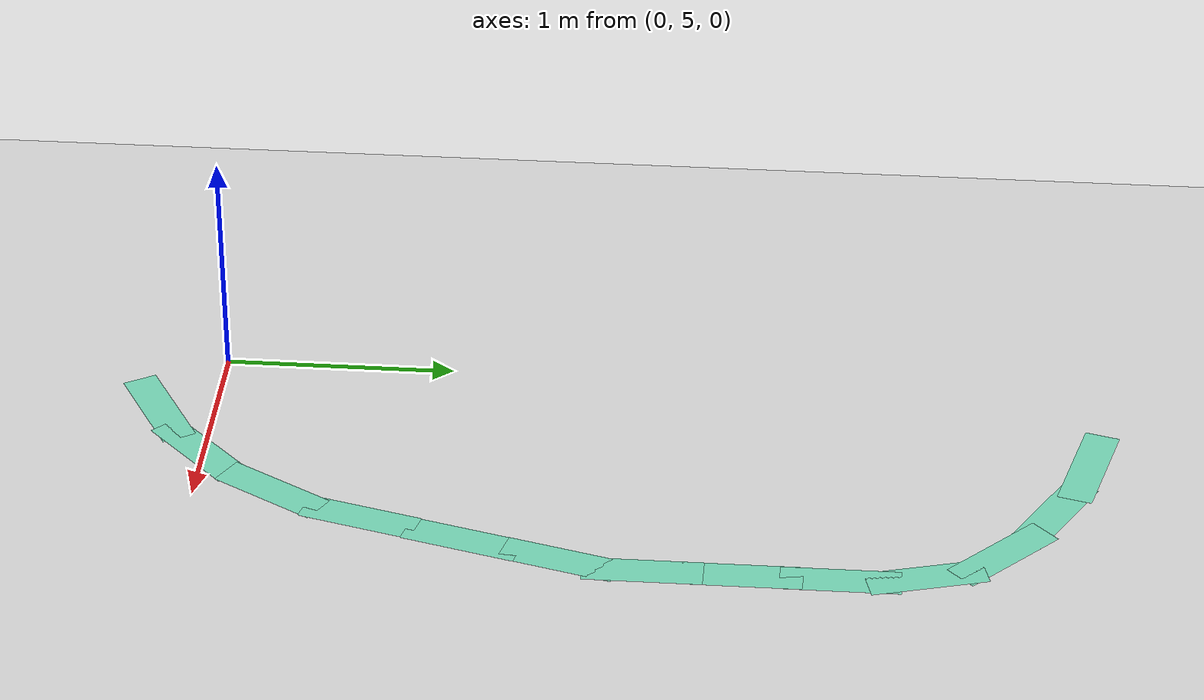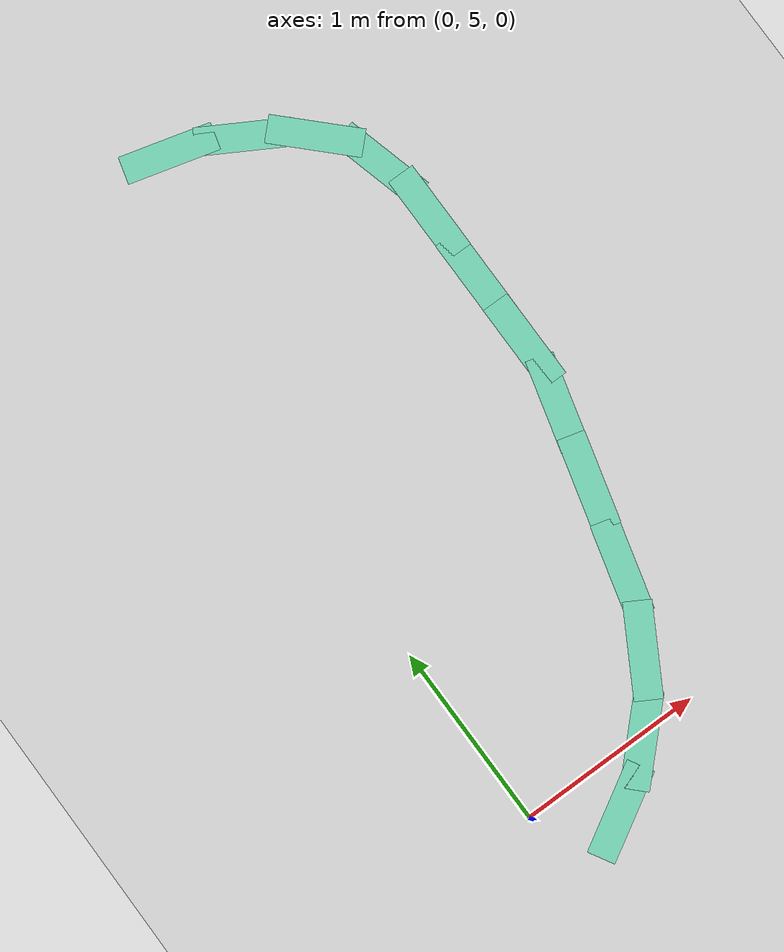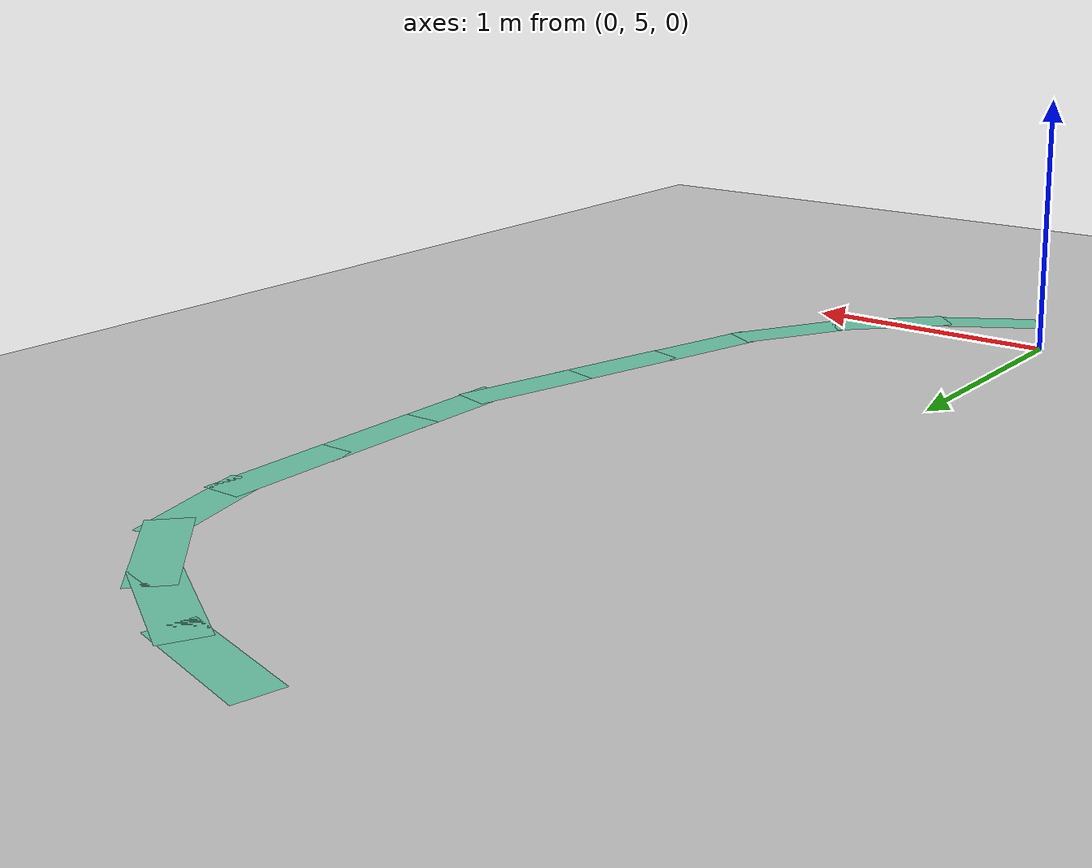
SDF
<sdf version="1.6">
 <world name="default">
  <model name="ground_plane">
   <static>1</static>
   <link name="link">
    <collision name="collision">
     <geometry><plane><normal>0 0 1</normal><size>100 100</size></plane></geometry>
     <surface><friction><ode><mu>100</mu><mu2>50</mu2></ode></friction></surface>
    </collision>
    <visual name="visual">
     <cast_shadows>0</cast_shadows>
     <geometry><plane><normal>0 0 1</normal><size>100 100</size></plane></geometry>
     <material>
      <script><uri>file://media/materials/scripts/gazebo.material</uri><name>Gazebo/Grey</name></script>
     </material>
    </visual>
   </link>
  </model>
  <model name="pomdp_path">
   <link name="Wall_100_clone">
    <pose>-9.37317 0.877969 0 0 -0 2.618</pose>
    <visual name="Wall_100_Visual">
     <pose>0 0 0.0001 0 -0 0</pose>
     <geometry><box><size>0.5 0.15 0</size></box></geometry>
     <material>
      <script><uri>file://media/materials/scripts/gazebo.material</uri><name>Gazebo/Grey</name></script>
      <ambient>0.435294 0.796078 0.67451 1</ambient>
      <shader type="pixel"/>
     </material>
     <meta><layer>0</layer></meta>
    </visual>
    <collision name="Wall_100_Collision">
     <pose>0 0 0.0001 0 -0 0</pose>
     <geometry><box><size>0.5 0.15 0</size></box></geometry>
     <surface>
      <friction>
       <ode><mu>1</mu><mu2>1</mu2><fdir1>0 0 0</fdir1><slip1>0</slip1><slip2>0</slip2></ode>
       <torsional>
        <coefficient>1</coefficient>
        <patch_radius>0</patch_radius>
        <surface_radius>0</surface_radius>
        <use_patch_radius>1</use_patch_radius>
        <ode><slip>0</slip></ode>
       </torsional>
      </friction>
      <bounce><restitution_coefficient>0</restitution_coefficient><threshold>1e+06</threshold></bounce>
      <contact>
       <collide_without_contact>0</collide_without_contact>
       <collide_without_contact_bitmask>1</collide_without_contact_bitmask>
       <collide_bitmask>1</collide_bitmask>
       <ode>
        <soft_cfm>0</soft_cfm>
        <soft_erp>0.2</soft_erp>
        <kp>1e+13</kp>
        <kd>1</kd>
        <max_vel>0.01</max_vel>
        <min_depth>0</min_depth>
       </ode>
       <bullet>
        <split_impulse>1</split_impulse>
        <split_impulse_penetration_threshold>-0.01</split_impulse_penetration_threshold>
        <soft_cfm>0</soft_cfm>
        <soft_erp>0.2</soft_erp>
        <kp>1e+13</kp>
        <kd>1</kd>
       </bullet>
      </contact>
     </surface>
    </collision>
   </link>
   <link name="Wall_101_clone_clone">
    <pose>-9.02258 0.726106 0 0 0 -0.261789</pose>
    <visual name="Wall_101_Visual">
     <pose>0 0 0.0001 0 -0 0</pose>
     <geometry><box><size>0.5 0.15 0</size></box></geometry>
     <material>
      <script><uri>file://media/materials/scripts/gazebo.material</uri><name>Gazebo/Grey</name></script>
      <ambient>0.435294 0.796078 0.67451 1</ambient>
      <shader type="pixel"/>
     </material>
     <meta><layer>0</layer></meta>
    </visual>
    <collision name="Wall_101_Collision">
     <pose>0 0 0.0001 0 -0 0</pose>
     <geometry><box><size>0.5 0.15 0</size></box></geometry>
     <surface>
      <friction>
       <ode><mu>1</mu><mu2>1</mu2><fdir1>0 0 0</fdir1><slip1>0</slip1><slip2>0</slip2></ode>
       <torsional>
        <coefficient>1</coefficient>
        <patch_radius>0</patch_radius>
        <surface_radius>0</surface_radius>
        <use_patch_radius>1</use_patch_radius>
        <ode><slip>0</slip></ode>
       </torsional>
      </friction>
      <bounce><restitution_coefficient>0</restitution_coefficient><threshold>1e+06</threshold></bounce>
      <contact>
       <collide_without_contact>0</collide_without_contact>
       <collide_without_contact_bitmask>1</collide_without_contact_bitmask>
       <collide_bitmask>1</collide_bitmask>
       <ode>
        <soft_cfm>0</soft_cfm>
        <soft_erp>0.2</soft_erp>
        <kp>1e+13</kp>
        <kd>1</kd>
        <max_vel>0.01</max_vel>
        <min_depth>0</min_depth>
       </ode>
       <bullet>
        <split_impulse>1</split_impulse>
        <split_impulse_penetration_threshold>-0.01</split_impulse_penetration_threshold>
        <soft_cfm>0</soft_cfm>
        <soft_erp>0.2</soft_erp>
        <kp>1e+13</kp>
        <kd>1</kd>
       </bullet>
      </contact>
     </surface>
    </collision>
   </link>
   <link name="Wall_125_clone_1">
    <pose>-8.88574 4.74457 0 0 -0 0.523606</pose>
    <visual name="Wall_125_Visual">
     <pose>0 0 0.0001 0 -0 0</pose>
     <geometry><box><size>0.5 0.15 0</size></box></geometry>
     <material>
      <script><uri>file://media/materials/scripts/gazebo.material</uri><name>Gazebo/Grey</name></script>
      <ambient>0.435294 0.796078 0.67451 1</ambient>
      <shader type="pixel"/>
     </material>
     <meta><layer>0</layer></meta>
    </visual>
    <collision name="Wall_125_Collision">
     <pose>0 0 0.0001 0 -0 0</pose>
     <geometry><box><size>0.5 0.15 0</size></box></geometry>
     <surface>
      <friction>
       <ode><mu>1</mu><mu2>1</mu2><fdir1>0 0 0</fdir1><slip1>0</slip1><slip2>0</slip2></ode>
       <torsional>
        <coefficient>1</coefficient>
        <patch_radius>0</patch_radius>
        <surface_radius>0</surface_radius>
        <use_patch_radius>1</use_patch_radius>
        <ode><slip>0</slip></ode>
       </torsional>
      </friction>
      <bounce><restitution_coefficient>0</restitution_coefficient><threshold>1e+06</threshold></bounce>
      <contact>
       <collide_without_contact>0</collide_without_contact>
       <collide_without_contact_bitmask>1</collide_without_contact_bitmask>
       <collide_bitmask>1</collide_bitmask>
       <ode>
        <soft_cfm>0</soft_cfm>
        <soft_erp>0.2</soft_erp>
        <kp>1e+13</kp>
        <kd>1</kd>
        <max_vel>0.01</max_vel>
        <min_depth>0</min_depth>
       </ode>
       <bullet>
        <split_impulse>1</split_impulse>
        <split_impulse_penetration_threshold>-0.01</split_impulse_penetration_threshold>
        <soft_cfm>0</soft_cfm>
        <soft_erp>0.2</soft_erp>
        <kp>1e+13</kp>
        <kd>1</kd>
       </bullet>
      </contact>
     </surface>
    </collision>
   </link>
   <link name="Wall_126_clone">
    <pose>-9.18154 4.52159 0 0 -0 0.785406</pose>
    <visual name="Wall_126_Visual">
     <pose>0 0 0.0001 0 -0 0</pose>
     <geometry><box><size>0.5 0.15 0</size></box></geometry>
     <material>
      <script><uri>file://media/materials/scripts/gazebo.material</uri><name>Gazebo/Grey</name></script>
      <ambient>0.435294 0.796078 0.67451 1</ambient>
      <shader type="pixel"/>
     </material>
     <meta><layer>0</layer></meta>
    </visual>
    <collision name="Wall_126_Collision">
     <pose>0 0 0.0001 0 -0 0</pose>
     <geometry><box><size>0.5 0.15 0</size></box></geometry>
     <surface>
      <friction>
       <ode><mu>1</mu><mu2>1</mu2><fdir1>0 0 0</fdir1><slip1>0</slip1><slip2>0</slip2></ode>
       <torsional>
        <coefficient>1</coefficient>
        <patch_radius>0</patch_radius>
        <surface_radius>0</surface_radius>
        <use_patch_radius>1</use_patch_radius>
        <ode><slip>0</slip></ode>
       </torsional>
      </friction>
      <bounce><restitution_coefficient>0</restitution_coefficient><threshold>1e+06</threshold></bounce>
      <contact>
       <collide_without_contact>0</collide_without_contact>
       <collide_without_contact_bitmask>1</collide_without_contact_bitmask>
       <collide_bitmask>1</collide_bitmask>
       <ode>
        <soft_cfm>0</soft_cfm>
        <soft_erp>0.2</soft_erp>
        <kp>1e+13</kp>
        <kd>1</kd>
        <max_vel>0.01</max_vel>
        <min_depth>0</min_depth>
       </ode>
       <bullet>
        <split_impulse>1</split_impulse>
        <split_impulse_penetration_threshold>-0.01</split_impulse_penetration_threshold>
        <soft_cfm>0</soft_cfm>
        <soft_erp>0.2</soft_erp>
        <kp>1e+13</kp>
        <kd>1</kd>
       </bullet>
      </contact>
     </surface>
    </collision>
   </link>
   <link name="Wall_127_clone">
    <pose>-9.45239 4.16599 0 0 -0 1.0472</pose>
    <visual name="Wall_127_Visual">
     <pose>0 0 0.0001 0 -0 0</pose>
     <geometry><box><size>0.5 0.15 0</size></box></geometry>
     <material>
      <script><uri>file://media/materials/scripts/gazebo.material</uri><name>Gazebo/Grey</name></script>
      <ambient>0.435294 0.796078 0.67451 1</ambient>
      <shader type="pixel"/>
     </material>
     <meta><layer>0</layer></meta>
    </visual>
    <collision name="Wall_127_Collision">
     <pose>0 0 0.0001 0 -0 0</pose>
     <geometry><box><size>0.5 0.15 0</size></box></geometry>
     <surface>
      <friction>
       <ode><mu>1</mu><mu2>1</mu2><fdir1>0 0 0</fdir1><slip1>0</slip1><slip2>0</slip2></ode>
       <torsional>
        <coefficient>1</coefficient>
        <patch_radius>0</patch_radius>
        <surface_radius>0</surface_radius>
        <use_patch_radius>1</use_patch_radius>
        <ode><slip>0</slip></ode>
       </torsional>
      </friction>
      <bounce><restitution_coefficient>0</restitution_coefficient><threshold>1e+06</threshold></bounce>
      <contact>
       <collide_without_contact>0</collide_without_contact>
       <collide_without_contact_bitmask>1</collide_without_contact_bitmask>
       <collide_bitmask>1</collide_bitmask>
       <ode>
        <soft_cfm>0</soft_cfm>
        <soft_erp>0.2</soft_erp>
        <kp>1e+13</kp>
        <kd>1</kd>
        <max_vel>0.01</max_vel>
        <min_depth>0</min_depth>
       </ode>
       <bullet>
        <split_impulse>1</split_impulse>
        <split_impulse_penetration_threshold>-0.01</split_impulse_penetration_threshold>
        <soft_cfm>0</soft_cfm>
        <soft_erp>0.2</soft_erp>
        <kp>1e+13</kp>
        <kd>1</kd>
       </bullet>
      </contact>
     </surface>
    </collision>
   </link>
   <link name="Wall_128_clone">
    <pose>-9.61651 3.77217 0 0 -0 1.309</pose>
    <visual name="Wall_128_Visual">
     <pose>0 0 0.0001 0 -0 0</pose>
     <geometry><box><size>0.5 0.15 0</size></box></geometry>
     <material>
      <script><uri>file://media/materials/scripts/gazebo.material</uri><name>Gazebo/Grey</name></script>
      <ambient>0.435294 0.796078 0.67451 1</ambient>
      <shader type="pixel"/>
     </material>
     <meta><layer>0</layer></meta>
    </visual>
    <collision name="Wall_128_Collision">
     <pose>0 0 0.0001 0 -0 0</pose>
     <geometry><box><size>0.5 0.15 0</size></box></geometry>
     <surface>
      <friction>
       <ode><mu>1</mu><mu2>1</mu2><fdir1>0 0 0</fdir1><slip1>0</slip1><slip2>0</slip2></ode>
       <torsional>
        <coefficient>1</coefficient>
        <patch_radius>0</patch_radius>
        <surface_radius>0</surface_radius>
        <use_patch_radius>1</use_patch_radius>
        <ode><slip>0</slip></ode>
       </torsional>
      </friction>
      <bounce><restitution_coefficient>0</restitution_coefficient><threshold>1e+06</threshold></bounce>
      <contact>
       <collide_without_contact>0</collide_without_contact>
       <collide_without_contact_bitmask>1</collide_without_contact_bitmask>
       <collide_bitmask>1</collide_bitmask>
       <ode>
        <soft_cfm>0</soft_cfm>
        <soft_erp>0.2</soft_erp>
        <kp>1e+13</kp>
        <kd>1</kd>
        <max_vel>0.01</max_vel>
        <min_depth>0</min_depth>
       </ode>
       <bullet>
        <split_impulse>1</split_impulse>
        <split_impulse_penetration_threshold>-0.01</split_impulse_penetration_threshold>
        <soft_cfm>0</soft_cfm>
        <soft_erp>0.2</soft_erp>
        <kp>1e+13</kp>
        <kd>1</kd>
       </bullet>
      </contact>
     </surface>
    </collision>
   </link>
   <link name="Wall_128_clone_clone">
    <pose>-9.73995 3.3262 0 0 0 -1.83259</pose>
    <visual name="Wall_128_Visual">
     <pose>0 0 0.0001 0 -0 0</pose>
     <geometry><box><size>0.5 0.15 0</size></box></geometry>
     <material>
      <script><uri>file://media/materials/scripts/gazebo.material</uri><name>Gazebo/Grey</name></script>
      <ambient>0.435294 0.796078 0.67451 1</ambient>
      <shader type="pixel"/>
     </material>
     <meta><layer>0</layer></meta>
    </visual>
    <collision name="Wall_128_Collision">
     <pose>0 0 0.0001 0 -0 0</pose>
     <geometry><box><size>0.5 0.15 0</size></box></geometry>
     <surface>
      <friction>
       <ode><mu>1</mu><mu2>1</mu2><fdir1>0 0 0</fdir1><slip1>0</slip1><slip2>0</slip2></ode>
       <torsional>
        <coefficient>1</coefficient>
        <patch_radius>0</patch_radius>
        <surface_radius>0</surface_radius>
        <use_patch_radius>1</use_patch_radius>
        <ode><slip>0</slip></ode>
       </torsional>
      </friction>
      <bounce><restitution_coefficient>0</restitution_coefficient><threshold>1e+06</threshold></bounce>
      <contact>
       <collide_without_contact>0</collide_without_contact>
       <collide_without_contact_bitmask>1</collide_without_contact_bitmask>
       <collide_bitmask>1</collide_bitmask>
       <ode>
        <soft_cfm>0</soft_cfm>
        <soft_erp>0.2</soft_erp>
        <kp>1e+13</kp>
        <kd>1</kd>
        <max_vel>0.01</max_vel>
        <min_depth>0</min_depth>
       </ode>
       <bullet>
        <split_impulse>1</split_impulse>
        <split_impulse_penetration_threshold>-0.01</split_impulse_penetration_threshold>
        <soft_cfm>0</soft_cfm>
        <soft_erp>0.2</soft_erp>
        <kp>1e+13</kp>
        <kd>1</kd>
       </bullet>
      </contact>
     </surface>
    </collision>
   </link>
   <link name="Wall_128_clone_clone_0">
    <pose>-9.8493 2.91197 0 0 0 -1.83259</pose>
    <visual name="Wall_128_Visual">
     <pose>0 0 0.0001 0 -0 0</pose>
     <geometry><box><size>0.5 0.15 0</size></box></geometry>
     <material>
      <script><uri>file://media/materials/scripts/gazebo.material</uri><name>Gazebo/Grey</name></script>
      <ambient>0.435294 0.796078 0.67451 1</ambient>
      <shader type="pixel"/>
     </material>
     <meta><layer>0</layer></meta>
    </visual>
    <collision name="Wall_128_Collision">
     <pose>0 0 0.0001 0 -0 0</pose>
     <geometry><box><size>0.5 0.15 0</size></box></geometry>
     <surface>
      <friction>
       <ode><mu>1</mu><mu2>1</mu2><fdir1>0 0 0</fdir1><slip1>0</slip1><slip2>0</slip2></ode>
       <torsional>
        <coefficient>1</coefficient>
        <patch_radius>0</patch_radius>
        <surface_radius>0</surface_radius>
        <use_patch_radius>1</use_patch_radius>
        <ode><slip>0</slip></ode>
       </torsional>
      </friction>
      <bounce><restitution_coefficient>0</restitution_coefficient><threshold>1e+06</threshold></bounce>
      <contact>
       <collide_without_contact>0</collide_without_contact>
       <collide_without_contact_bitmask>1</collide_without_contact_bitmask>
       <collide_bitmask>1</collide_bitmask>
       <ode>
        <soft_cfm>0</soft_cfm>
        <soft_erp>0.2</soft_erp>
        <kp>1e+13</kp>
        <kd>1</kd>
        <max_vel>0.01</max_vel>
        <min_depth>0</min_depth>
       </ode>
       <bullet>
        <split_impulse>1</split_impulse>
        <split_impulse_penetration_threshold>-0.01</split_impulse_penetration_threshold>
        <soft_cfm>0</soft_cfm>
        <soft_erp>0.2</soft_erp>
        <kp>1e+13</kp>
        <kd>1</kd>
       </bullet>
      </contact>
     </surface>
    </collision>
   </link>
   <link name="Wall_131_clone">
    <pose>-9.90114 2.56634 0 0 -0 1.5708</pose>
    <visual name="Wall_131_Visual">
     <pose>0 0 0.0001 0 -0 0</pose>
     <geometry><box><size>0.5 0.15 0</size></box></geometry>
     <material>
      <script><uri>file://media/materials/scripts/gazebo.material</uri><name>Gazebo/Grey</name></script>
      <ambient>0.435294 0.796078 0.67451 1</ambient>
      <shader type="pixel"/>
     </material>
     <meta><layer>0</layer></meta>
    </visual>
    <collision name="Wall_131_Collision">
     <pose>0 0 0.0001 0 -0 0</pose>
     <geometry><box><size>0.5 0.15 0</size></box></geometry>
     <surface>
      <friction>
       <ode><mu>1</mu><mu2>1</mu2><fdir1>0 0 0</fdir1><slip1>0</slip1><slip2>0</slip2></ode>
       <torsional>
        <coefficient>1</coefficient>
        <patch_radius>0</patch_radius>
        <surface_radius>0</surface_radius>
        <use_patch_radius>1</use_patch_radius>
        <ode><slip>0</slip></ode>
       </torsional>
      </friction>
      <bounce><restitution_coefficient>0</restitution_coefficient><threshold>1e+06</threshold></bounce>
      <contact>
       <collide_without_contact>0</collide_without_contact>
       <collide_without_contact_bitmask>1</collide_without_contact_bitmask>
       <collide_bitmask>1</collide_bitmask>
       <ode>
        <soft_cfm>0</soft_cfm>
        <soft_erp>0.2</soft_erp>
        <kp>1e+13</kp>
        <kd>1</kd>
        <max_vel>0.01</max_vel>
        <min_depth>0</min_depth>
       </ode>
       <bullet>
        <split_impulse>1</split_impulse>
        <split_impulse_penetration_threshold>-0.01</split_impulse_penetration_threshold>
        <soft_cfm>0</soft_cfm>
        <soft_erp>0.2</soft_erp>
        <kp>1e+13</kp>
        <kd>1</kd>
       </bullet>
      </contact>
     </surface>
    </collision>
   </link>
   <link name="Wall_131_clone_0">
    <pose>-9.90198 2.15752 0 0 -0 1.5708</pose>
    <visual name="Wall_131_Visual">
     <pose>0 0 0.0001 0 -0 0</pose>
     <geometry><box><size>0.5 0.15 0</size></box></geometry>
     <material>
      <script><uri>file://media/materials/scripts/gazebo.material</uri><name>Gazebo/Grey</name></script>
      <ambient>0.435294 0.796078 0.67451 1</ambient>
      <shader type="pixel"/>
     </material>
     <meta><layer>0</layer></meta>
    </visual>
    <collision name="Wall_131_Collision">
     <pose>0 0 0.0001 0 -0 0</pose>
     <geometry><box><size>0.5 0.15 0</size></box></geometry>
     <surface>
      <friction>
       <ode><mu>1</mu><mu2>1</mu2><fdir1>0 0 0</fdir1><slip1>0</slip1><slip2>0</slip2></ode>
       <torsional>
        <coefficient>1</coefficient>
        <patch_radius>0</patch_radius>
        <surface_radius>0</surface_radius>
        <use_patch_radius>1</use_patch_radius>
        <ode><slip>0</slip></ode>
       </torsional>
      </friction>
      <bounce><restitution_coefficient>0</restitution_coefficient><threshold>1e+06</threshold></bounce>
      <contact>
       <collide_without_contact>0</collide_without_contact>
       <collide_without_contact_bitmask>1</collide_without_contact_bitmask>
       <collide_bitmask>1</collide_bitmask>
       <ode>
        <soft_cfm>0</soft_cfm>
        <soft_erp>0.2</soft_erp>
        <kp>1e+13</kp>
        <kd>1</kd>
        <max_vel>0.01</max_vel>
        <min_depth>0</min_depth>
       </ode>
       <bullet>
        <split_impulse>1</split_impulse>
        <split_impulse_penetration_threshold>-0.01</split_impulse_penetration_threshold>
        <soft_cfm>0</soft_cfm>
        <soft_erp>0.2</soft_erp>
        <kp>1e+13</kp>
        <kd>1</kd>
       </bullet>
      </contact>
     </surface>
    </collision>
   </link>
   <link name="Wall_131_clone_0_clone">
    <pose>-9.90345 1.75394 0 0 0 -1.57079</pose>
    <visual name="Wall_131_Visual">
     <pose>0 0 0.0001 0 -0 0</pose>
     <geometry><box><size>0.5 0.15 0</size></box></geometry>
     <material>
      <script><uri>file://media/materials/scripts/gazebo.material</uri><name>Gazebo/Grey</name></script>
      <ambient>0.435294 0.796078 0.67451 1</ambient>
      <shader type="pixel"/>
     </material>
     <meta><layer>0</layer></meta>
    </visual>
    <collision name="Wall_131_Collision">
     <pose>0 0 0.0001 0 -0 0</pose>
     <geometry><box><size>0.5 0.15 0</size></box></geometry>
     <surface>
      <friction>
       <ode><mu>1</mu><mu2>1</mu2><fdir1>0 0 0</fdir1><slip1>0</slip1><slip2>0</slip2></ode>
       <torsional>
        <coefficient>1</coefficient>
        <patch_radius>0</patch_radius>
        <surface_radius>0</surface_radius>
        <use_patch_radius>1</use_patch_radius>
        <ode><slip>0</slip></ode>
       </torsional>
      </friction>
      <bounce><restitution_coefficient>0</restitution_coefficient><threshold>1e+06</threshold></bounce>
      <contact>
       <collide_without_contact>0</collide_without_contact>
       <collide_without_contact_bitmask>1</collide_without_contact_bitmask>
       <collide_bitmask>1</collide_bitmask>
       <ode>
        <soft_cfm>0</soft_cfm>
        <soft_erp>0.2</soft_erp>
        <kp>1e+13</kp>
        <kd>1</kd>
        <max_vel>0.01</max_vel>
        <min_depth>0</min_depth>
       </ode>
       <bullet>
        <split_impulse>1</split_impulse>
        <split_impulse_penetration_threshold>-0.01</split_impulse_penetration_threshold>
        <soft_cfm>0</soft_cfm>
        <soft_erp>0.2</soft_erp>
        <kp>1e+13</kp>
        <kd>1</kd>
       </bullet>
      </contact>
     </surface>
    </collision>
   </link>
   <link name="Wall_134_clone">
    <pose>-9.85626 1.40405 0 0 -0 1.8326</pose>
    <visual name="Wall_134_Visual">
     <pose>0 0 0.0001 0 -0 0</pose>
     <geometry><box><size>0.5 0.15 0</size></box></geometry>
     <material>
      <script><uri>file://media/materials/scripts/gazebo.material</uri><name>Gazebo/Grey</name></script>
      <ambient>0.435294 0.796078 0.67451 1</ambient>
      <shader type="pixel"/>
     </material>
     <meta><layer>0</layer></meta>
    </visual>
    <collision name="Wall_134_Collision">
     <pose>0 0 0.0001 0 -0 0</pose>
     <geometry><box><size>0.5 0.15 0</size></box></geometry>
     <surface>
      <friction>
       <ode><mu>1</mu><mu2>1</mu2><fdir1>0 0 0</fdir1><slip1>0</slip1><slip2>0</slip2></ode>
       <torsional>
        <coefficient>1</coefficient>
        <patch_radius>0</patch_radius>
        <surface_radius>0</surface_radius>
        <use_patch_radius>1</use_patch_radius>
        <ode><slip>0</slip></ode>
       </torsional>
      </friction>
      <bounce><restitution_coefficient>0</restitution_coefficient><threshold>1e+06</threshold></bounce>
      <contact>
       <collide_without_contact>0</collide_without_contact>
       <collide_without_contact_bitmask>1</collide_without_contact_bitmask>
       <collide_bitmask>1</collide_bitmask>
       <ode>
        <soft_cfm>0</soft_cfm>
        <soft_erp>0.2</soft_erp>
        <kp>1e+13</kp>
        <kd>1</kd>
        <max_vel>0.01</max_vel>
        <min_depth>0</min_depth>
       </ode>
       <bullet>
        <split_impulse>1</split_impulse>
        <split_impulse_penetration_threshold>-0.01</split_impulse_penetration_threshold>
        <soft_cfm>0</soft_cfm>
        <soft_erp>0.2</soft_erp>
        <kp>1e+13</kp>
        <kd>1</kd>
       </bullet>
      </contact>
     </surface>
    </collision>
   </link>
   <link name="Wall_136_clone">
    <pose>-9.67189 1.09089 0 0 -0 2.3562</pose>
    <visual name="Wall_136_Visual">
     <pose>0 0 0.0001 0 -0 0</pose>
     <geometry><box><size>0.5 0.15 0</size></box></geometry>
     <material>
      <script><uri>file://media/materials/scripts/gazebo.material</uri><name>Gazebo/Grey</name></script>
      <ambient>0.435294 0.796078 0.67451 1</ambient>
      <shader type="pixel"/>
     </material>
     <meta><layer>0</layer></meta>
    </visual>
    <collision name="Wall_136_Collision">
     <pose>0 0 0.0001 0 -0 0</pose>
     <geometry><box><size>0.5 0.15 0</size></box></geometry>
     <surface>
      <friction>
       <ode><mu>1</mu><mu2>1</mu2><fdir1>0 0 0</fdir1><slip1>0</slip1><slip2>0</slip2></ode>
       <torsional>
        <coefficient>1</coefficient>
        <patch_radius>0</patch_radius>
        <surface_radius>0</surface_radius>
        <use_patch_radius>1</use_patch_radius>
        <ode><slip>0</slip></ode>
       </torsional>
      </friction>
      <bounce><restitution_coefficient>0</restitution_coefficient><threshold>1e+06</threshold></bounce>
      <contact>
       <collide_without_contact>0</collide_without_contact>
       <collide_without_contact_bitmask>1</collide_without_contact_bitmask>
       <collide_bitmask>1</collide_bitmask>
       <ode>
        <soft_cfm>0</soft_cfm>
        <soft_erp>0.2</soft_erp>
        <kp>1e+13</kp>
        <kd>1</kd>
        <max_vel>0.01</max_vel>
        <min_depth>0</min_depth>
       </ode>
       <bullet>
        <split_impulse>1</split_impulse>
        <split_impulse_penetration_threshold>-0.01</split_impulse_penetration_threshold>
        <soft_cfm>0</soft_cfm>
        <soft_erp>0.2</soft_erp>
        <kp>1e+13</kp>
        <kd>1</kd>
       </bullet>
      </contact>
     </surface>
    </collision>
   </link>
   <static>1</static>
   <pose>-8.49995 9.50005 0 0 -0 3.14159</pose>
  </model>
 </world>
</sdf>
